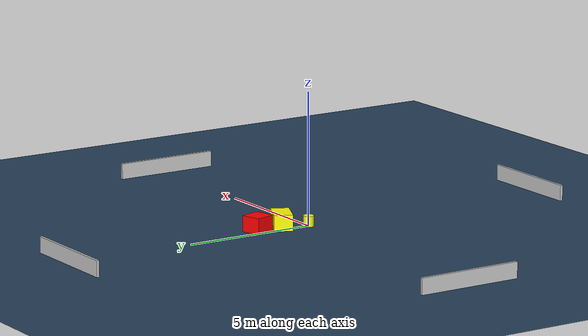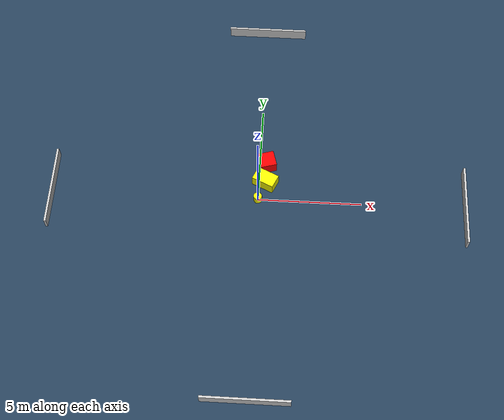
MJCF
<?xml version="1.0" ?>
<mujoco model="generated_environment">
  <option timestep="0.01" integrator="RK4" cone="elliptic"/>
  <default>
    <geom density="1"/>
  </default>
  <asset>
    <texture builtin="gradient" height="3072" name="skybox" rgb1="0.3 0.5 0.7" rgb2="0 0 0" type="skybox" width="512"/>
    <texture builtin="checker" height="300" name="groundplane" rgb1="0.2 0.3 0.4" rgb2="0.1 0.2 0.3" type="2d" width="300"/>
    <material name="groundplane" reflectance="0.2" texrepeat="5 5" texture="groundplane"/>
  </asset>
  <worldbody>
    <light dir="0 0 -1" directional="true" pos="0 0 1.5"/>
    <geom condim="3" friction="0.5 0.005 0.001" material="groundplane" name="floor" pos="0 0 0" size="0 0 0.05" type="plane"/>
    <body name="walls">
      <geom name="wall_1" condim="4" pos="-10.0 0.0 0.3" rgba="0.800000011920929 0.800000011920929 0.800000011920929 1.0" size="0.05 2.0 0.3" type="box"/>
      <geom name="wall_2" condim="4" pos="10.0 0.0 0.3" rgba="0.800000011920929 0.800000011920929 0.800000011920929 1.0" size="0.05 2.0 0.3" type="box"/>
      <geom name="wall_3" condim="4" pos="0.0 -10.0 0.3" rgba="0.800000011920929 0.800000011920929 0.800000011920929 1.0" size="2.0 0.05 0.3" type="box"/>
      <geom name="wall_4" condim="4" pos="0.0 10.0 0.3" rgba="0.800000011920929 0.800000011920929 0.800000011920929 1.0" size="2.0 0.05 0.3" type="box"/>
    </body>
    <body name="robot">
      <joint name="joint_x" type="slide" pos="0 0 0" axis="1 0 0"/>
      <joint name="joint_y" type="slide" pos="0 0 0" axis="0 1 0"/>
      <geom name="robot" type="cylinder" pos="0.0 0.0 0.2" size="0.2 0.2 0.0" mass="5.0" friction="1.0 0.005 0.0001" condim="4" rgba="1.0 1.0 0.0 1.0"/>
    </body>
    <body name="obstacle_1_movable">
      <geom name="obstacle_1_movable" condim="4" pos="0.3194315596091861 0.9617038690493704 0.3" euler="0 0 155.1051989492849" friction="0.0 0.005 0.001" rgba="1.0 1.0 0.0 1.0" size="0.5486734791852097 0.3434893766044632 0.3" type="box" mass="0.1"/>
      <joint type="free"/>
    </body>
    <body name="obstacle_2_static">
      <geom name="obstacle_2_static" condim="4" pos="0.3626283069161547 1.9646889881032952 0.3" euler="0 0 285.93806402443175" friction="0.0 0.005 0.001" rgba="1.0 0.0 0.0 1.0" size="0.38998251179308785 0.3876251343676962 0.3" type="box"/>
    </body>
  </worldbody>
  <actuator>
    <motor name="actuator_x" joint="joint_x" gear="1" ctrlrange="-1 1"/>
    <motor name="actuator_y" joint="joint_y" gear="1" ctrlrange="-1 1"/>
  </actuator>
</mujoco>
